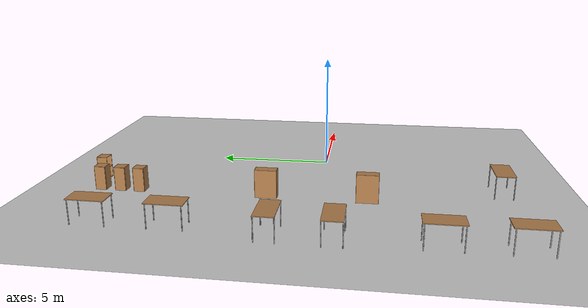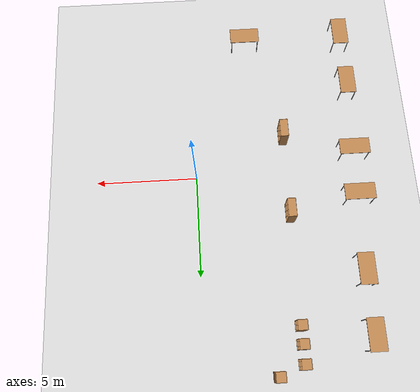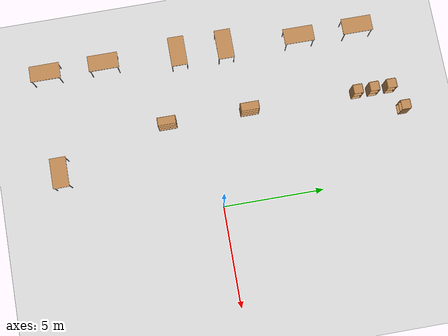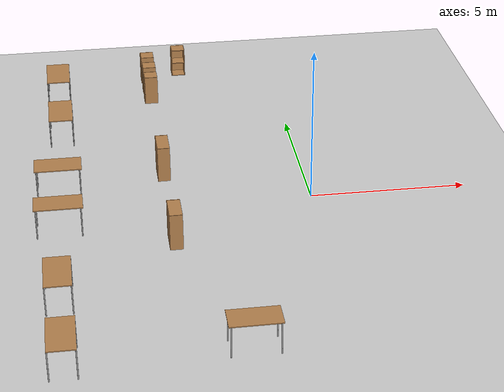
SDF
<sdf version="1.6">
 <world name="default">
  <model name="ground_plane">
   <static>1</static>
   <link name="link">
    <collision name="collision">
     <geometry><plane><normal>0 0 1</normal><size>100 100</size></plane></geometry>
     <surface>
      <contact><collide_bitmask>65535</collide_bitmask></contact>
      <friction><ode><mu>100</mu><mu2>50</mu2></ode></friction>
     </surface>
    </collision>
    <visual name="visual">
     <cast_shadows>0</cast_shadows>
     <geometry><plane><normal>0 0 1</normal><size>100 100</size></plane></geometry>
     <material>
      <script><uri>file://media/materials/scripts/gazebo.material</uri><name>Gazebo/Grey</name></script>
     </material>
    </visual>
   </link>
  </model>
  <model name="bookshelf">
   <static>1</static>
   <link name="link">
    <inertial><mass>1</mass></inertial>
    <collision name="back">
     <pose>0 0.005 0.6 0 -0 0</pose>
     <geometry><box><size>0.9 0.01 1.2</size></box></geometry>
    </collision>
    <visual name="visual1">
     <pose>0 0.005 0.6 0 -0 0</pose>
     <geometry><box><size>0.9 0.01 1.2</size></box></geometry>
     <material>
      <script><uri>file://media/materials/scripts/gazebo.material</uri><name>Gazebo/Wood</name></script>
     </material>
    </visual>
    <collision name="left_side">
     <pose>0.45 -0.195 0.6 0 -0 0</pose>
     <geometry><box><size>0.02 0.4 1.2</size></box></geometry>
    </collision>
    <visual name="visual2">
     <pose>0.45 -0.195 0.6 0 -0 0</pose>
     <geometry><box><size>0.02 0.4 1.2</size></box></geometry>
     <material>
      <script><uri>file://media/materials/scripts/gazebo.material</uri><name>Gazebo/Wood</name></script>
     </material>
    </visual>
    <collision name="right_side">
     <pose>-0.45 -0.195 0.6 0 -0 0</pose>
     <geometry><box><size>0.02 0.4 1.2</size></box></geometry>
    </collision>
    <visual name="visual3">
     <pose>-0.45 -0.195 0.6 0 -0 0</pose>
     <geometry><box><size>0.02 0.4 1.2</size></box></geometry>
     <material>
      <script><uri>file://media/materials/scripts/gazebo.material</uri><name>Gazebo/Wood</name></script>
     </material>
    </visual>
    <collision name="bottom">
     <pose>0 -0.195 0.03 0 -0 0</pose>
     <geometry><box><size>0.88 0.4 0.06</size></box></geometry>
    </collision>
    <visual name="visual4">
     <pose>0 -0.195 0.03 0 -0 0</pose>
     <geometry><box><size>0.88 0.4 0.06</size></box></geometry>
     <material>
      <script><uri>file://media/materials/scripts/gazebo.material</uri><name>Gazebo/Wood</name></script>
     </material>
    </visual>
    <collision name="top">
     <pose>0 -0.195 1.19 0 -0 0</pose>
     <geometry><box><size>0.88 0.4 0.02</size></box></geometry>
    </collision>
    <visual name="visual5">
     <pose>0 -0.195 1.19 0 -0 0</pose>
     <geometry><box><size>0.88 0.4 0.02</size></box></geometry>
     <material>
      <script><uri>file://media/materials/scripts/gazebo.material</uri><name>Gazebo/Wood</name></script>
     </material>
    </visual>
    <collision name="low_shelf">
     <pose>0 -0.195 0.43 0 -0 0</pose>
     <geometry><box><size>0.88 0.4 0.02</size></box></geometry>
    </collision>
    <visual name="visual6">
     <pose>0 -0.195 0.43 0 -0 0</pose>
     <geometry><box><size>0.88 0.4 0.02</size></box></geometry>
     <material>
      <script><uri>file://media/materials/scripts/gazebo.material</uri><name>Gazebo/Wood</name></script>
     </material>
    </visual>
    <collision name="high_shelf">
     <pose>0 -0.195 0.8 0 -0 0</pose>
     <geometry><box><size>0.88 0.4 0.02</size></box></geometry>
    </collision>
    <visual name="visual7">
     <pose>0 -0.195 0.8 0 -0 0</pose>
     <geometry><box><size>0.88 0.4 0.02</size></box></geometry>
     <material>
      <script><uri>file://media/materials/scripts/gazebo.material</uri><name>Gazebo/Wood</name></script>
     </material>
    </visual>
   </link>
   <pose>-4.70667 -2.04836 0 0 -0 1.5707</pose>
  </model>
  <model name="cabinet">
   <static>1</static>
   <link name="cabinet_bottom_plate">
    <inertial>
     <pose>0 0 -1 0 -0 0</pose>
     <inertia><ixx>2.05</ixx><ixy>0</ixy><ixz>0</ixz><iyy>2.05</iyy><iyz>0</iyz><izz>2.05</izz></inertia>
     <mass>25</mass>
    </inertial>
    <collision name="cabinet_bottom_plate_geom">
     <pose>0 0 0.01 0 -0 0</pose>
     <geometry><box><size>0.45 0.45 0.02</size></box></geometry>
    </collision>
    <visual name="cabinet_bottom_plate_geom_visual">
     <pose>0 0 0.01 0 -0 0</pose>
     <geometry><box><size>0.45 0.45 0.02</size></box></geometry>
     <material>
      <script><uri>file://media/materials/scripts/gazebo.material</uri><name>Gazebo/Wood</name></script>
     </material>
    </visual>
    <collision name="cabinet_bottom_plate_geom_cabinet_back_plate">
     <pose>0.235 0 0.51 0 -0 0</pose>
     <geometry><box><size>0.02 0.45 1.02</size></box></geometry>
    </collision>
    <visual name="cabinet_bottom_plate_geom_cabinet_back_plate_visual">
     <pose>0.235 0 0.51 0 -0 0</pose>
     <geometry><box><size>0.02 0.45 1.02</size></box></geometry>
     <material>
      <script><uri>file://media/materials/scripts/gazebo.material</uri><name>Gazebo/Wood</name></script>
     </material>
    </visual>
    <collision name="cabinet_bottom_plate_geom_cabinet_left_plate">
     <pose>0 0.235 0.51 0 -0 0</pose>
     <geometry><box><size>0.45 0.02 1.02</size></box></geometry>
    </collision>
    <visual name="cabinet_bottom_plate_geom_cabinet_left_plate_visual">
     <pose>0 0.235 0.51 0 -0 0</pose>
     <geometry><box><size>0.45 0.02 1.02</size></box></geometry>
     <material>
      <script><uri>file://media/materials/scripts/gazebo.material</uri><name>Gazebo/Wood</name></script>
     </material>
    </visual>
    <collision name="cabinet_bottom_plate_geom_cabinet_middle_plate">
     <pose>0 0 0.51 0 -0 0</pose>
     <geometry><box><size>0.45 0.45 0.02</size></box></geometry>
    </collision>
    <visual name="cabinet_bottom_plate_geom_cabinet_middle_plate_visual">
     <pose>0 0 0.51 0 -0 0</pose>
     <geometry><box><size>0.45 0.45 0.02</size></box></geometry>
     <material>
      <script><uri>file://media/materials/scripts/gazebo.material</uri><name>Gazebo/Wood</name></script>
     </material>
    </visual>
    <collision name="cabinet_bottom_plate_geom_cabinet_right_plate">
     <pose>0 -0.235 0.51 0 -0 0</pose>
     <geometry><box><size>0.45 0.02 1.02</size></box></geometry>
    </collision>
    <visual name="cabinet_bottom_plate_geom_cabinet_right_plate_visual">
     <pose>0 -0.235 0.51 0 -0 0</pose>
     <geometry><box><size>0.45 0.02 1.02</size></box></geometry>
     <material>
      <script><uri>file://media/materials/scripts/gazebo.material</uri><name>Gazebo/Wood</name></script>
     </material>
    </visual>
    <collision name="cabinet_bottom_plate_geom_cabinet_top_plate">
     <pose>0 0 1.01 0 -0 0</pose>
     <geometry><box><size>0.45 0.45 0.02</size></box></geometry>
    </collision>
    <visual name="cabinet_bottom_plate_geom_cabinet_top_plate_visual">
     <pose>0 0 1.01 0 -0 0</pose>
     <geometry><box><size>0.45 0.45 0.02</size></box></geometry>
     <material>
      <script><uri>file://media/materials/scripts/gazebo.material</uri><name>Gazebo/Wood</name></script>
     </material>
    </visual>
   </link>
   <pose>-4.49605 9.20323 0 0 0 -3.13728</pose>
  </model>
  <model name="table">
   <static>1</static>
   <link name="link">
    <collision name="surface">
     <pose>0 0 1 0 -0 0</pose>
     <geometry><box><size>1.5 0.8 0.03</size></box></geometry>
     <surface><friction><ode><mu>0.6</mu><mu2>0.6</mu2></ode></friction></surface>
    </collision>
    <visual name="visual1">
     <pose>0 0 1 0 -0 0</pose>
     <geometry><box><size>1.5 0.8 0.03</size></box></geometry>
     <material>
      <script><uri>file://media/materials/scripts/gazebo.material</uri><name>Gazebo/Wood</name></script>
     </material>
    </visual>
    <collision name="front_left_leg">
     <pose>0.68 0.38 0.5 0 -0 0</pose>
     <geometry><cylinder><radius>0.02</radius><length>1</length></cylinder></geometry>
    </collision>
    <visual name="front_left_leg">
     <pose>0.68 0.38 0.5 0 -0 0</pose>
     <geometry><cylinder><radius>0.02</radius><length>1</length></cylinder></geometry>
     <material>
      <script><uri>file://media/materials/scripts/gazebo.material</uri><name>Gazebo/Grey</name></script>
     </material>
    </visual>
    <collision name="front_right_leg">
     <pose>0.68 -0.38 0.5 0 -0 0</pose>
     <geometry><cylinder><radius>0.02</radius><length>1</length></cylinder></geometry>
    </collision>
    <visual name="front_right_leg">
     <pose>0.68 -0.38 0.5 0 -0 0</pose>
     <geometry><cylinder><radius>0.02</radius><length>1</length></cylinder></geometry>
     <material>
      <script><uri>file://media/materials/scripts/gazebo.material</uri><name>Gazebo/Grey</name></script>
     </material>
    </visual>
    <collision name="back_right_leg">
     <pose>-0.68 -0.38 0.5 0 -0 0</pose>
     <geometry><cylinder><radius>0.02</radius><length>1</length></cylinder></geometry>
    </collision>
    <visual name="back_right_leg">
     <pose>-0.68 -0.38 0.5 0 -0 0</pose>
     <geometry><cylinder><radius>0.02</radius><length>1</length></cylinder></geometry>
     <material>
      <script><uri>file://media/materials/scripts/gazebo.material</uri><name>Gazebo/Grey</name></script>
     </material>
    </visual>
    <collision name="back_left_leg">
     <pose>-0.68 0.38 0.5 0 -0 0</pose>
     <geometry><cylinder><radius>0.02</radius><length>1</length></cylinder></geometry>
    </collision>
    <visual name="back_left_leg">
     <pose>-0.68 0.38 0.5 0 -0 0</pose>
     <geometry><cylinder><radius>0.02</radius><length>1</length></cylinder></geometry>
     <material>
      <script><uri>file://media/materials/scripts/gazebo.material</uri><name>Gazebo/Grey</name></script>
     </material>
    </visual>
   </link>
   <pose>-2.89831 -7.57702 0 0 -0 0</pose>
  </model>
  <model name="table_clone_2">
   <static>1</static>
   <link name="link">
    <collision name="surface">
     <pose>0 0 1 0 -0 0</pose>
     <geometry><box><size>1.5 0.8 0.03</size></box></geometry>
     <surface><friction><ode><mu>0.6</mu><mu2>0.6</mu2></ode></friction></surface>
    </collision>
    <visual name="visual1">
     <pose>0 0 1 0 -0 0</pose>
     <geometry><box><size>1.5 0.8 0.03</size></box></geometry>
     <material>
      <script><uri>file://media/materials/scripts/gazebo.material</uri><name>Gazebo/Wood</name></script>
     </material>
    </visual>
    <collision name="front_left_leg">
     <pose>0.68 0.38 0.5 0 -0 0</pose>
     <geometry><cylinder><radius>0.02</radius><length>1</length></cylinder></geometry>
    </collision>
    <visual name="front_left_leg">
     <pose>0.68 0.38 0.5 0 -0 0</pose>
     <geometry><cylinder><radius>0.02</radius><length>1</length></cylinder></geometry>
     <material>
      <script><uri>file://media/materials/scripts/gazebo.material</uri><name>Gazebo/Grey</name></script>
     </material>
    </visual>
    <collision name="front_right_leg">
     <pose>0.68 -0.38 0.5 0 -0 0</pose>
     <geometry><cylinder><radius>0.02</radius><length>1</length></cylinder></geometry>
    </collision>
    <visual name="front_right_leg">
     <pose>0.68 -0.38 0.5 0 -0 0</pose>
     <geometry><cylinder><radius>0.02</radius><length>1</length></cylinder></geometry>
     <material>
      <script><uri>file://media/materials/scripts/gazebo.material</uri><name>Gazebo/Grey</name></script>
     </material>
    </visual>
    <collision name="back_right_leg">
     <pose>-0.68 -0.38 0.5 0 -0 0</pose>
     <geometry><cylinder><radius>0.02</radius><length>1</length></cylinder></geometry>
    </collision>
    <visual name="back_right_leg">
     <pose>-0.68 -0.38 0.5 0 -0 0</pose>
     <geometry><cylinder><radius>0.02</radius><length>1</length></cylinder></geometry>
     <material>
      <script><uri>file://media/materials/scripts/gazebo.material</uri><name>Gazebo/Grey</name></script>
     </material>
    </visual>
    <collision name="back_left_leg">
     <pose>-0.68 0.38 0.5 0 -0 0</pose>
     <geometry><cylinder><radius>0.02</radius><length>1</length></cylinder></geometry>
    </collision>
    <visual name="back_left_leg">
     <pose>-0.68 0.38 0.5 0 -0 0</pose>
     <geometry><cylinder><radius>0.02</radius><length>1</length></cylinder></geometry>
     <material>
      <script><uri>file://media/materials/scripts/gazebo.material</uri><name>Gazebo/Grey</name></script>
     </material>
    </visual>
   </link>
   <pose>-7.91446 1.40823 0 0 -0 0</pose>
  </model>
  <model name="table_clone_3">
   <static>1</static>
   <link name="link">
    <collision name="surface">
     <pose>0 0 1 0 -0 0</pose>
     <geometry><box><size>1.5 0.8 0.03</size></box></geometry>
     <surface><friction><ode><mu>0.6</mu><mu2>0.6</mu2></ode></friction></surface>
    </collision>
    <visual name="visual1">
     <pose>0 0 1 0 -0 0</pose>
     <geometry><box><size>1.5 0.8 0.03</size></box></geometry>
     <material>
      <script><uri>file://media/materials/scripts/gazebo.material</uri><name>Gazebo/Wood</name></script>
     </material>
    </visual>
    <collision name="front_left_leg">
     <pose>0.68 0.38 0.5 0 -0 0</pose>
     <geometry><cylinder><radius>0.02</radius><length>1</length></cylinder></geometry>
    </collision>
    <visual name="front_left_leg">
     <pose>0.68 0.38 0.5 0 -0 0</pose>
     <geometry><cylinder><radius>0.02</radius><length>1</length></cylinder></geometry>
     <material>
      <script><uri>file://media/materials/scripts/gazebo.material</uri><name>Gazebo/Grey</name></script>
     </material>
    </visual>
    <collision name="front_right_leg">
     <pose>0.68 -0.38 0.5 0 -0 0</pose>
     <geometry><cylinder><radius>0.02</radius><length>1</length></cylinder></geometry>
    </collision>
    <visual name="front_right_leg">
     <pose>0.68 -0.38 0.5 0 -0 0</pose>
     <geometry><cylinder><radius>0.02</radius><length>1</length></cylinder></geometry>
     <material>
      <script><uri>file://media/materials/scripts/gazebo.material</uri><name>Gazebo/Grey</name></script>
     </material>
    </visual>
    <collision name="back_right_leg">
     <pose>-0.68 -0.38 0.5 0 -0 0</pose>
     <geometry><cylinder><radius>0.02</radius><length>1</length></cylinder></geometry>
    </collision>
    <visual name="back_right_leg">
     <pose>-0.68 -0.38 0.5 0 -0 0</pose>
     <geometry><cylinder><radius>0.02</radius><length>1</length></cylinder></geometry>
     <material>
      <script><uri>file://media/materials/scripts/gazebo.material</uri><name>Gazebo/Grey</name></script>
     </material>
    </visual>
    <collision name="back_left_leg">
     <pose>-0.68 0.38 0.5 0 -0 0</pose>
     <geometry><cylinder><radius>0.02</radius><length>1</length></cylinder></geometry>
    </collision>
    <visual name="back_left_leg">
     <pose>-0.68 0.38 0.5 0 -0 0</pose>
     <geometry><cylinder><radius>0.02</radius><length>1</length></cylinder></geometry>
     <material>
      <script><uri>file://media/materials/scripts/gazebo.material</uri><name>Gazebo/Grey</name></script>
     </material>
    </visual>
   </link>
   <pose>-7.95138 -0.949267 0 0 -0 0</pose>
  </model>
  <model name="table_clone_4">
   <static>1</static>
   <link name="link">
    <collision name="surface">
     <pose>0 0 1 0 -0 0</pose>
     <geometry><box><size>1.5 0.8 0.03</size></box></geometry>
     <surface><friction><ode><mu>0.6</mu><mu2>0.6</mu2></ode></friction></surface>
    </collision>
    <visual name="visual1">
     <pose>0 0 1 0 -0 0</pose>
     <geometry><box><size>1.5 0.8 0.03</size></box></geometry>
     <material>
      <script><uri>file://media/materials/scripts/gazebo.material</uri><name>Gazebo/Wood</name></script>
     </material>
    </visual>
    <collision name="front_left_leg">
     <pose>0.68 0.38 0.5 0 -0 0</pose>
     <geometry><cylinder><radius>0.02</radius><length>1</length></cylinder></geometry>
    </collision>
    <visual name="front_left_leg">
     <pose>0.68 0.38 0.5 0 -0 0</pose>
     <geometry><cylinder><radius>0.02</radius><length>1</length></cylinder></geometry>
     <material>
      <script><uri>file://media/materials/scripts/gazebo.material</uri><name>Gazebo/Grey</name></script>
     </material>
    </visual>
    <collision name="front_right_leg">
     <pose>0.68 -0.38 0.5 0 -0 0</pose>
     <geometry><cylinder><radius>0.02</radius><length>1</length></cylinder></geometry>
    </collision>
    <visual name="front_right_leg">
     <pose>0.68 -0.38 0.5 0 -0 0</pose>
     <geometry><cylinder><radius>0.02</radius><length>1</length></cylinder></geometry>
     <material>
      <script><uri>file://media/materials/scripts/gazebo.material</uri><name>Gazebo/Grey</name></script>
     </material>
    </visual>
    <collision name="back_right_leg">
     <pose>-0.68 -0.38 0.5 0 -0 0</pose>
     <geometry><cylinder><radius>0.02</radius><length>1</length></cylinder></geometry>
    </collision>
    <visual name="back_right_leg">
     <pose>-0.68 -0.38 0.5 0 -0 0</pose>
     <geometry><cylinder><radius>0.02</radius><length>1</length></cylinder></geometry>
     <material>
      <script><uri>file://media/materials/scripts/gazebo.material</uri><name>Gazebo/Grey</name></script>
     </material>
    </visual>
    <collision name="back_left_leg">
     <pose>-0.68 0.38 0.5 0 -0 0</pose>
     <geometry><cylinder><radius>0.02</radius><length>1</length></cylinder></geometry>
    </collision>
    <visual name="back_left_leg">
     <pose>-0.68 0.38 0.5 0 -0 0</pose>
     <geometry><cylinder><radius>0.02</radius><length>1</length></cylinder></geometry>
     <material>
      <script><uri>file://media/materials/scripts/gazebo.material</uri><name>Gazebo/Grey</name></script>
     </material>
    </visual>
   </link>
   <pose>-8.04061 -4.67394 0 0 -0 1.5707</pose>
  </model>
  <model name="table_clone_4_clone">
   <static>1</static>
   <link name="link">
    <collision name="surface">
     <pose>0 0 1 0 -0 0</pose>
     <geometry><box><size>1.5 0.8 0.03</size></box></geometry>
     <surface><friction><ode><mu>0.6</mu><mu2>0.6</mu2></ode></friction></surface>
    </collision>
    <visual name="visual1">
     <pose>0 0 1 0 -0 0</pose>
     <geometry><box><size>1.5 0.8 0.03</size></box></geometry>
     <material>
      <script><uri>file://media/materials/scripts/gazebo.material</uri><name>Gazebo/Wood</name></script>
     </material>
    </visual>
    <collision name="front_left_leg">
     <pose>0.68 0.38 0.5 0 -0 0</pose>
     <geometry><cylinder><radius>0.02</radius><length>1</length></cylinder></geometry>
    </collision>
    <visual name="front_left_leg">
     <pose>0.68 0.38 0.5 0 -0 0</pose>
     <geometry><cylinder><radius>0.02</radius><length>1</length></cylinder></geometry>
     <material>
      <script><uri>file://media/materials/scripts/gazebo.material</uri><name>Gazebo/Grey</name></script>
     </material>
    </visual>
    <collision name="front_right_leg">
     <pose>0.68 -0.38 0.5 0 -0 0</pose>
     <geometry><cylinder><radius>0.02</radius><length>1</length></cylinder></geometry>
    </collision>
    <visual name="front_right_leg">
     <pose>0.68 -0.38 0.5 0 -0 0</pose>
     <geometry><cylinder><radius>0.02</radius><length>1</length></cylinder></geometry>
     <material>
      <script><uri>file://media/materials/scripts/gazebo.material</uri><name>Gazebo/Grey</name></script>
     </material>
    </visual>
    <collision name="back_right_leg">
     <pose>-0.68 -0.38 0.5 0 -0 0</pose>
     <geometry><cylinder><radius>0.02</radius><length>1</length></cylinder></geometry>
    </collision>
    <visual name="back_right_leg">
     <pose>-0.68 -0.38 0.5 0 -0 0</pose>
     <geometry><cylinder><radius>0.02</radius><length>1</length></cylinder></geometry>
     <material>
      <script><uri>file://media/materials/scripts/gazebo.material</uri><name>Gazebo/Grey</name></script>
     </material>
    </visual>
    <collision name="back_left_leg">
     <pose>-0.68 0.38 0.5 0 -0 0</pose>
     <geometry><cylinder><radius>0.02</radius><length>1</length></cylinder></geometry>
    </collision>
    <visual name="back_left_leg">
     <pose>-0.68 0.38 0.5 0 -0 0</pose>
     <geometry><cylinder><radius>0.02</radius><length>1</length></cylinder></geometry>
     <material>
      <script><uri>file://media/materials/scripts/gazebo.material</uri><name>Gazebo/Grey</name></script>
     </material>
    </visual>
   </link>
   <pose>-8.00667 -7.59514 0 0 -0 1.5707</pose>
  </model>
  <model name="table_clone_4_clone_5">
   <static>1</static>
   <link name="link">
    <collision name="surface">
     <pose>0 0 1 0 -0 0</pose>
     <geometry><box><size>1.5 0.8 0.03</size></box></geometry>
     <surface><friction><ode><mu>0.6</mu><mu2>0.6</mu2></ode></friction></surface>
    </collision>
    <visual name="visual1">
     <pose>0 0 1 0 -0 0</pose>
     <geometry><box><size>1.5 0.8 0.03</size></box></geometry>
     <material>
      <script><uri>file://media/materials/scripts/gazebo.material</uri><name>Gazebo/Wood</name></script>
     </material>
    </visual>
    <collision name="front_left_leg">
     <pose>0.68 0.38 0.5 0 -0 0</pose>
     <geometry><cylinder><radius>0.02</radius><length>1</length></cylinder></geometry>
    </collision>
    <visual name="front_left_leg">
     <pose>0.68 0.38 0.5 0 -0 0</pose>
     <geometry><cylinder><radius>0.02</radius><length>1</length></cylinder></geometry>
     <material>
      <script><uri>file://media/materials/scripts/gazebo.material</uri><name>Gazebo/Grey</name></script>
     </material>
    </visual>
    <collision name="front_right_leg">
     <pose>0.68 -0.38 0.5 0 -0 0</pose>
     <geometry><cylinder><radius>0.02</radius><length>1</length></cylinder></geometry>
    </collision>
    <visual name="front_right_leg">
     <pose>0.68 -0.38 0.5 0 -0 0</pose>
     <geometry><cylinder><radius>0.02</radius><length>1</length></cylinder></geometry>
     <material>
      <script><uri>file://media/materials/scripts/gazebo.material</uri><name>Gazebo/Grey</name></script>
     </material>
    </visual>
    <collision name="back_right_leg">
     <pose>-0.68 -0.38 0.5 0 -0 0</pose>
     <geometry><cylinder><radius>0.02</radius><length>1</length></cylinder></geometry>
    </collision>
    <visual name="back_right_leg">
     <pose>-0.68 -0.38 0.5 0 -0 0</pose>
     <geometry><cylinder><radius>0.02</radius><length>1</length></cylinder></geometry>
     <material>
      <script><uri>file://media/materials/scripts/gazebo.material</uri><name>Gazebo/Grey</name></script>
     </material>
    </visual>
    <collision name="back_left_leg">
     <pose>-0.68 0.38 0.5 0 -0 0</pose>
     <geometry><cylinder><radius>0.02</radius><length>1</length></cylinder></geometry>
    </collision>
    <visual name="back_left_leg">
     <pose>-0.68 0.38 0.5 0 -0 0</pose>
     <geometry><cylinder><radius>0.02</radius><length>1</length></cylinder></geometry>
     <material>
      <script><uri>file://media/materials/scripts/gazebo.material</uri><name>Gazebo/Grey</name></script>
     </material>
    </visual>
   </link>
   <pose>-7.76242 8.11161 0 0 -0 1.5707</pose>
  </model>
  <model name="table_clone_4_clone_6">
   <static>1</static>
   <link name="link">
    <collision name="surface">
     <pose>0 0 1 0 -0 0</pose>
     <geometry><box><size>1.5 0.8 0.03</size></box></geometry>
     <surface><friction><ode><mu>0.6</mu><mu2>0.6</mu2></ode></friction></surface>
    </collision>
    <visual name="visual1">
     <pose>0 0 1 0 -0 0</pose>
     <geometry><box><size>1.5 0.8 0.03</size></box></geometry>
     <material>
      <script><uri>file://media/materials/scripts/gazebo.material</uri><name>Gazebo/Wood</name></script>
     </material>
    </visual>
    <collision name="front_left_leg">
     <pose>0.68 0.38 0.5 0 -0 0</pose>
     <geometry><cylinder><radius>0.02</radius><length>1</length></cylinder></geometry>
    </collision>
    <visual name="front_left_leg">
     <pose>0.68 0.38 0.5 0 -0 0</pose>
     <geometry><cylinder><radius>0.02</radius><length>1</length></cylinder></geometry>
     <material>
      <script><uri>file://media/materials/scripts/gazebo.material</uri><name>Gazebo/Grey</name></script>
     </material>
    </visual>
    <collision name="front_right_leg">
     <pose>0.68 -0.38 0.5 0 -0 0</pose>
     <geometry><cylinder><radius>0.02</radius><length>1</length></cylinder></geometry>
    </collision>
    <visual name="front_right_leg">
     <pose>0.68 -0.38 0.5 0 -0 0</pose>
     <geometry><cylinder><radius>0.02</radius><length>1</length></cylinder></geometry>
     <material>
      <script><uri>file://media/materials/scripts/gazebo.material</uri><name>Gazebo/Grey</name></script>
     </material>
    </visual>
    <collision name="back_right_leg">
     <pose>-0.68 -0.38 0.5 0 -0 0</pose>
     <geometry><cylinder><radius>0.02</radius><length>1</length></cylinder></geometry>
    </collision>
    <visual name="back_right_leg">
     <pose>-0.68 -0.38 0.5 0 -0 0</pose>
     <geometry><cylinder><radius>0.02</radius><length>1</length></cylinder></geometry>
     <material>
      <script><uri>file://media/materials/scripts/gazebo.material</uri><name>Gazebo/Grey</name></script>
     </material>
    </visual>
    <collision name="back_left_leg">
     <pose>-0.68 0.38 0.5 0 -0 0</pose>
     <geometry><cylinder><radius>0.02</radius><length>1</length></cylinder></geometry>
    </collision>
    <visual name="back_left_leg">
     <pose>-0.68 0.38 0.5 0 -0 0</pose>
     <geometry><cylinder><radius>0.02</radius><length>1</length></cylinder></geometry>
     <material>
      <script><uri>file://media/materials/scripts/gazebo.material</uri><name>Gazebo/Grey</name></script>
     </material>
    </visual>
   </link>
   <pose>-7.74309 5.14812 0 0 -0 1.5707</pose>
  </model>
  <model name="bookshelf_clone">
   <static>1</static>
   <link name="link">
    <inertial><mass>1</mass></inertial>
    <collision name="back">
     <pose>0 0.005 0.6 0 -0 0</pose>
     <geometry><box><size>0.9 0.01 1.2</size></box></geometry>
    </collision>
    <visual name="visual1">
     <pose>0 0.005 0.6 0 -0 0</pose>
     <geometry><box><size>0.9 0.01 1.2</size></box></geometry>
     <material>
      <script><uri>file://media/materials/scripts/gazebo.material</uri><name>Gazebo/Wood</name></script>
     </material>
    </visual>
    <collision name="left_side">
     <pose>0.45 -0.195 0.6 0 -0 0</pose>
     <geometry><box><size>0.02 0.4 1.2</size></box></geometry>
    </collision>
    <visual name="visual2">
     <pose>0.45 -0.195 0.6 0 -0 0</pose>
     <geometry><box><size>0.02 0.4 1.2</size></box></geometry>
     <material>
      <script><uri>file://media/materials/scripts/gazebo.material</uri><name>Gazebo/Wood</name></script>
     </material>
    </visual>
    <collision name="right_side">
     <pose>-0.45 -0.195 0.6 0 -0 0</pose>
     <geometry><box><size>0.02 0.4 1.2</size></box></geometry>
    </collision>
    <visual name="visual3">
     <pose>-0.45 -0.195 0.6 0 -0 0</pose>
     <geometry><box><size>0.02 0.4 1.2</size></box></geometry>
     <material>
      <script><uri>file://media/materials/scripts/gazebo.material</uri><name>Gazebo/Wood</name></script>
     </material>
    </visual>
    <collision name="bottom">
     <pose>0 -0.195 0.03 0 -0 0</pose>
     <geometry><box><size>0.88 0.4 0.06</size></box></geometry>
    </collision>
    <visual name="visual4">
     <pose>0 -0.195 0.03 0 -0 0</pose>
     <geometry><box><size>0.88 0.4 0.06</size></box></geometry>
     <material>
      <script><uri>file://media/materials/scripts/gazebo.material</uri><name>Gazebo/Wood</name></script>
     </material>
    </visual>
    <collision name="top">
     <pose>0 -0.195 1.19 0 -0 0</pose>
     <geometry><box><size>0.88 0.4 0.02</size></box></geometry>
    </collision>
    <visual name="visual5">
     <pose>0 -0.195 1.19 0 -0 0</pose>
     <geometry><box><size>0.88 0.4 0.02</size></box></geometry>
     <material>
      <script><uri>file://media/materials/scripts/gazebo.material</uri><name>Gazebo/Wood</name></script>
     </material>
    </visual>
    <collision name="low_shelf">
     <pose>0 -0.195 0.43 0 -0 0</pose>
     <geometry><box><size>0.88 0.4 0.02</size></box></geometry>
    </collision>
    <visual name="visual6">
     <pose>0 -0.195 0.43 0 -0 0</pose>
     <geometry><box><size>0.88 0.4 0.02</size></box></geometry>
     <material>
      <script><uri>file://media/materials/scripts/gazebo.material</uri><name>Gazebo/Wood</name></script>
     </material>
    </visual>
    <collision name="high_shelf">
     <pose>0 -0.195 0.8 0 -0 0</pose>
     <geometry><box><size>0.88 0.4 0.02</size></box></geometry>
    </collision>
    <visual name="visual7">
     <pose>0 -0.195 0.8 0 -0 0</pose>
     <geometry><box><size>0.88 0.4 0.02</size></box></geometry>
     <material>
      <script><uri>file://media/materials/scripts/gazebo.material</uri><name>Gazebo/Wood</name></script>
     </material>
    </visual>
   </link>
   <pose>-4.72128 2.08533 0 0 -0 1.5707</pose>
  </model>
  <model name="cabinet_clone_1">
   <static>1</static>
   <link name="cabinet_bottom_plate">
    <inertial>
     <pose>0 0 -1 0 -0 0</pose>
     <inertia><ixx>2.05</ixx><ixy>0</ixy><ixz>0</ixz><iyy>2.05</iyy><iyz>0</iyz><izz>2.05</izz></inertia>
     <mass>25</mass>
    </inertial>
    <collision name="cabinet_bottom_plate_geom">
     <pose>0 0 0.01 0 -0 0</pose>
     <geometry><box><size>0.45 0.45 0.02</size></box></geometry>
    </collision>
    <visual name="cabinet_bottom_plate_geom_visual">
     <pose>0 0 0.01 0 -0 0</pose>
     <geometry><box><size>0.45 0.45 0.02</size></box></geometry>
     <material>
      <script><uri>file://media/materials/scripts/gazebo.material</uri><name>Gazebo/Wood</name></script>
     </material>
    </visual>
    <collision name="cabinet_bottom_plate_geom_cabinet_back_plate">
     <pose>0.235 0 0.51 0 -0 0</pose>
     <geometry><box><size>0.02 0.45 1.02</size></box></geometry>
    </collision>
    <visual name="cabinet_bottom_plate_geom_cabinet_back_plate_visual">
     <pose>0.235 0 0.51 0 -0 0</pose>
     <geometry><box><size>0.02 0.45 1.02</size></box></geometry>
     <material>
      <script><uri>file://media/materials/scripts/gazebo.material</uri><name>Gazebo/Wood</name></script>
     </material>
    </visual>
    <collision name="cabinet_bottom_plate_geom_cabinet_left_plate">
     <pose>0 0.235 0.51 0 -0 0</pose>
     <geometry><box><size>0.45 0.02 1.02</size></box></geometry>
    </collision>
    <visual name="cabinet_bottom_plate_geom_cabinet_left_plate_visual">
     <pose>0 0.235 0.51 0 -0 0</pose>
     <geometry><box><size>0.45 0.02 1.02</size></box></geometry>
     <material>
      <script><uri>file://media/materials/scripts/gazebo.material</uri><name>Gazebo/Wood</name></script>
     </material>
    </visual>
    <collision name="cabinet_bottom_plate_geom_cabinet_middle_plate">
     <pose>0 0 0.51 0 -0 0</pose>
     <geometry><box><size>0.45 0.45 0.02</size></box></geometry>
    </collision>
    <visual name="cabinet_bottom_plate_geom_cabinet_middle_plate_visual">
     <pose>0 0 0.51 0 -0 0</pose>
     <geometry><box><size>0.45 0.45 0.02</size></box></geometry>
     <material>
      <script><uri>file://media/materials/scripts/gazebo.material</uri><name>Gazebo/Wood</name></script>
     </material>
    </visual>
    <collision name="cabinet_bottom_plate_geom_cabinet_right_plate">
     <pose>0 -0.235 0.51 0 -0 0</pose>
     <geometry><box><size>0.45 0.02 1.02</size></box></geometry>
    </collision>
    <visual name="cabinet_bottom_plate_geom_cabinet_right_plate_visual">
     <pose>0 -0.235 0.51 0 -0 0</pose>
     <geometry><box><size>0.45 0.02 1.02</size></box></geometry>
     <material>
      <script><uri>file://media/materials/scripts/gazebo.material</uri><name>Gazebo/Wood</name></script>
     </material>
    </visual>
    <collision name="cabinet_bottom_plate_geom_cabinet_top_plate">
     <pose>0 0 1.01 0 -0 0</pose>
     <geometry><box><size>0.45 0.45 0.02</size></box></geometry>
    </collision>
    <visual name="cabinet_bottom_plate_geom_cabinet_top_plate_visual">
     <pose>0 0 1.01 0 -0 0</pose>
     <geometry><box><size>0.45 0.45 0.02</size></box></geometry>
     <material>
      <script><uri>file://media/materials/scripts/gazebo.material</uri><name>Gazebo/Wood</name></script>
     </material>
    </visual>
   </link>
   <pose>-3.33218 9.66466 0 0 -0 1.5707</pose>
  </model>
  <model name="cabinet_clone">
   <static>1</static>
   <link name="cabinet_bottom_plate">
    <inertial>
     <pose>0 0 -1 0 -0 0</pose>
     <inertia><ixx>2.05</ixx><ixy>0</ixy><ixz>0</ixz><iyy>2.05</iyy><iyz>0</iyz><izz>2.05</izz></inertia>
     <mass>25</mass>
    </inertial>
    <collision name="cabinet_bottom_plate_geom">
     <pose>0 0 0.01 0 -0 0</pose>
     <geometry><box><size>0.45 0.45 0.02</size></box></geometry>
    </collision>
    <visual name="cabinet_bottom_plate_geom_visual">
     <pose>0 0 0.01 0 -0 0</pose>
     <geometry><box><size>0.45 0.45 0.02</size></box></geometry>
     <material>
      <script><uri>file://media/materials/scripts/gazebo.material</uri><name>Gazebo/Wood</name></script>
     </material>
    </visual>
    <collision name="cabinet_bottom_plate_geom_cabinet_back_plate">
     <pose>0.235 0 0.51 0 -0 0</pose>
     <geometry><box><size>0.02 0.45 1.02</size></box></geometry>
    </collision>
    <visual name="cabinet_bottom_plate_geom_cabinet_back_plate_visual">
     <pose>0.235 0 0.51 0 -0 0</pose>
     <geometry><box><size>0.02 0.45 1.02</size></box></geometry>
     <material>
      <script><uri>file://media/materials/scripts/gazebo.material</uri><name>Gazebo/Wood</name></script>
     </material>
    </visual>
    <collision name="cabinet_bottom_plate_geom_cabinet_left_plate">
     <pose>0 0.235 0.51 0 -0 0</pose>
     <geometry><box><size>0.45 0.02 1.02</size></box></geometry>
    </collision>
    <visual name="cabinet_bottom_plate_geom_cabinet_left_plate_visual">
     <pose>0 0.235 0.51 0 -0 0</pose>
     <geometry><box><size>0.45 0.02 1.02</size></box></geometry>
     <material>
      <script><uri>file://media/materials/scripts/gazebo.material</uri><name>Gazebo/Wood</name></script>
     </material>
    </visual>
    <collision name="cabinet_bottom_plate_geom_cabinet_middle_plate">
     <pose>0 0 0.51 0 -0 0</pose>
     <geometry><box><size>0.45 0.45 0.02</size></box></geometry>
    </collision>
    <visual name="cabinet_bottom_plate_geom_cabinet_middle_plate_visual">
     <pose>0 0 0.51 0 -0 0</pose>
     <geometry><box><size>0.45 0.45 0.02</size></box></geometry>
     <material>
      <script><uri>file://media/materials/scripts/gazebo.material</uri><name>Gazebo/Wood</name></script>
     </material>
    </visual>
    <collision name="cabinet_bottom_plate_geom_cabinet_right_plate">
     <pose>0 -0.235 0.51 0 -0 0</pose>
     <geometry><box><size>0.45 0.02 1.02</size></box></geometry>
    </collision>
    <visual name="cabinet_bottom_plate_geom_cabinet_right_plate_visual">
     <pose>0 -0.235 0.51 0 -0 0</pose>
     <geometry><box><size>0.45 0.02 1.02</size></box></geometry>
     <material>
      <script><uri>file://media/materials/scripts/gazebo.material</uri><name>Gazebo/Wood</name></script>
     </material>
    </visual>
    <collision name="cabinet_bottom_plate_geom_cabinet_top_plate">
     <pose>0 0 1.01 0 -0 0</pose>
     <geometry><box><size>0.45 0.45 0.02</size></box></geometry>
    </collision>
    <visual name="cabinet_bottom_plate_geom_cabinet_top_plate_visual">
     <pose>0 0 1.01 0 -0 0</pose>
     <geometry><box><size>0.45 0.45 0.02</size></box></geometry>
     <material>
      <script><uri>file://media/materials/scripts/gazebo.material</uri><name>Gazebo/Wood</name></script>
     </material>
    </visual>
   </link>
   <pose>-4.49254 8.3371 0 0 0 -3.13728</pose>
  </model>
  <model name="cabinet_clone_0">
   <static>1</static>
   <link name="cabinet_bottom_plate">
    <inertial>
     <pose>0 0 -1 0 -0 0</pose>
     <inertia><ixx>2.05</ixx><ixy>0</ixy><ixz>0</ixz><iyy>2.05</iyy><iyz>0</iyz><izz>2.05</izz></inertia>
     <mass>25</mass>
    </inertial>
    <collision name="cabinet_bottom_plate_geom">
     <pose>0 0 0.01 0 -0 0</pose>
     <geometry><box><size>0.45 0.45 0.02</size></box></geometry>
    </collision>
    <visual name="cabinet_bottom_plate_geom_visual">
     <pose>0 0 0.01 0 -0 0</pose>
     <geometry><box><size>0.45 0.45 0.02</size></box></geometry>
     <material>
      <script><uri>file://media/materials/scripts/gazebo.material</uri><name>Gazebo/Wood</name></script>
     </material>
    </visual>
    <collision name="cabinet_bottom_plate_geom_cabinet_back_plate">
     <pose>0.235 0 0.51 0 -0 0</pose>
     <geometry><box><size>0.02 0.45 1.02</size></box></geometry>
    </collision>
    <visual name="cabinet_bottom_plate_geom_cabinet_back_plate_visual">
     <pose>0.235 0 0.51 0 -0 0</pose>
     <geometry><box><size>0.02 0.45 1.02</size></box></geometry>
     <material>
      <script><uri>file://media/materials/scripts/gazebo.material</uri><name>Gazebo/Wood</name></script>
     </material>
    </visual>
    <collision name="cabinet_bottom_plate_geom_cabinet_left_plate">
     <pose>0 0.235 0.51 0 -0 0</pose>
     <geometry><box><size>0.45 0.02 1.02</size></box></geometry>
    </collision>
    <visual name="cabinet_bottom_plate_geom_cabinet_left_plate_visual">
     <pose>0 0.235 0.51 0 -0 0</pose>
     <geometry><box><size>0.45 0.02 1.02</size></box></geometry>
     <material>
      <script><uri>file://media/materials/scripts/gazebo.material</uri><name>Gazebo/Wood</name></script>
     </material>
    </visual>
    <collision name="cabinet_bottom_plate_geom_cabinet_middle_plate">
     <pose>0 0 0.51 0 -0 0</pose>
     <geometry><box><size>0.45 0.45 0.02</size></box></geometry>
    </collision>
    <visual name="cabinet_bottom_plate_geom_cabinet_middle_plate_visual">
     <pose>0 0 0.51 0 -0 0</pose>
     <geometry><box><size>0.45 0.45 0.02</size></box></geometry>
     <material>
      <script><uri>file://media/materials/scripts/gazebo.material</uri><name>Gazebo/Wood</name></script>
     </material>
    </visual>
    <collision name="cabinet_bottom_plate_geom_cabinet_right_plate">
     <pose>0 -0.235 0.51 0 -0 0</pose>
     <geometry><box><size>0.45 0.02 1.02</size></box></geometry>
    </collision>
    <visual name="cabinet_bottom_plate_geom_cabinet_right_plate_visual">
     <pose>0 -0.235 0.51 0 -0 0</pose>
     <geometry><box><size>0.45 0.02 1.02</size></box></geometry>
     <material>
      <script><uri>file://media/materials/scripts/gazebo.material</uri><name>Gazebo/Wood</name></script>
     </material>
    </visual>
    <collision name="cabinet_bottom_plate_geom_cabinet_top_plate">
     <pose>0 0 1.01 0 -0 0</pose>
     <geometry><box><size>0.45 0.45 0.02</size></box></geometry>
    </collision>
    <visual name="cabinet_bottom_plate_geom_cabinet_top_plate_visual">
     <pose>0 0 1.01 0 -0 0</pose>
     <geometry><box><size>0.45 0.45 0.02</size></box></geometry>
     <material>
      <script><uri>file://media/materials/scripts/gazebo.material</uri><name>Gazebo/Wood</name></script>
     </material>
    </visual>
   </link>
   <pose>-4.49554 7.51084 0 0 0 -3.13728</pose>
  </model>
 </world>
</sdf>
